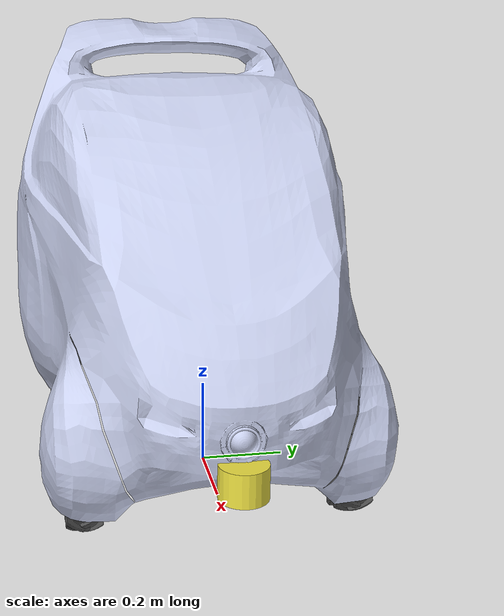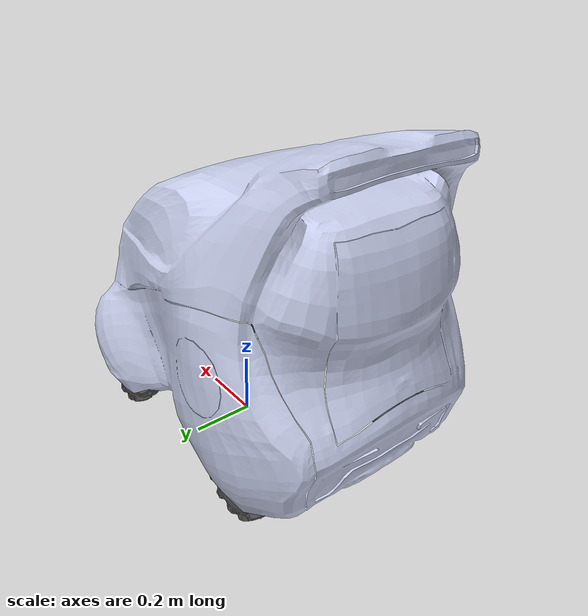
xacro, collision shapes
<?xml version="1.0"?>

<robot
  name="patrol_base"
  xmlns:xacro="http://www.ros.org/wiki/xacro"
  >

<xacro:include filename="$(find patrol_v3)/urdf/patrol.gazebo" />
  <xacro:property name="cameraSize" value="0.05"/>
  <xacro:property name="cameraMass" value="0.1"/>
  <xacro:arg name="gpu" default="false"/>
  <xacro:property name="gpu" value="$(arg gpu)" />

  <link  name="base_link" />

  <link
    name="chassis">
    <inertial>
      <origin
        xyz="-0.05588 -0.021836 0.11979"
        rpy="0 0 0" />
      <mass
        value="60" />
      <inertia
        ixx="0.2844"
        ixy="0.00042222"
        ixz="0.045634"
        iyy="0.36594"
        iyz="-0.000122"
        izz="0.4528" />
    </inertial>
    <visual>
      <origin
        xyz="0 0 0"
        rpy="0 0 0" />
      <geometry>
        <mesh
          filename="package://patrol_v3/meshes/chassis.STL" />
      </geometry>
      <material
        name="">
        <color
          rgba="0.79216 0.81961 0.93333 1" />
      </material>
    </visual>
    <collision>
      <origin
        xyz="0 0 0"
        rpy="0 0 0" />
      <geometry>
        <mesh
          filename="package://patrol_v3/meshes/chassis.STL" />
      </geometry>
    </collision>
  </link>

  <joint
    name="Jchassis"
    type="fixed">
    <origin
      xyz="0 0 0.2500"
      rpy="0 0 0" />
    <parent
      link="base_link" />
    <child
      link="chassis" />
    <axis
      xyz="0 0 0" />
  </joint>

  <link
    name="FL">
    <inertial>
      <origin
        xyz="-3.5376E-06 4.1624E-06 -0.041529"
        rpy="0 0 0" />
      <mass
        value="1.1763" />
      <inertia
        ixx="0.0072471"
        ixy="2.8453E-07"
        ixz="1.5822E-07"
        iyy="0.0072464"
        iyz="-6.4823E-07"
        izz="0.012903" />
    </inertial>
    <visual>
      <origin
        xyz="0 0 0"
        rpy="0 0 0" />
      <geometry>
        <mesh
          filename="package://patrol_v3/meshes/FL.STL" />
      </geometry>
      <material
        name="">
        <color
          rgba="0.29804 0.29804 0.29804 1" />
      </material>
    </visual>
    <collision>
      <origin
        xyz="0 0 0"
        rpy="0 0 0" />
      <geometry>
        <mesh
          filename="package://patrol_v3/meshes/FL.STL" />
      </geometry>
    </collision>
  </link>
  <joint
    name="FLJ"
    type="continuous">
    <origin
      xyz="0.29133 0.23565 -0.1178"
      rpy="1.5708 -1.5399 0" />
    <parent
      link="chassis" />
    <child
      link="FL" />
    <axis
      xyz="0 0 -1" />
  </joint>
  <link
    name="FR">
    <inertial>
      <origin
        xyz="-3.4705E-06 4.7858E-06 0.041533"
        rpy="0 0 0" />
      <mass
        value="1.1763" />
      <inertia
        ixx="0.0072471"
        ixy="2.854E-07"
        ixz="1.5817E-07"
        iyy="0.0072464"
        iyz="-6.4816E-07"
        izz="0.012903" />
    </inertial>
    <visual>
      <origin
        xyz="0 0 0"
        rpy="0 0 0" />
      <geometry>
        <mesh
          filename="package://patrol_v3/meshes/FR.STL" />
      </geometry>
      <material
        name="">
        <color
          rgba="0.29804 0.29804 0.29804 1" />
      </material>
    </visual>
    <collision>
      <origin
        xyz="0 0 0"
        rpy="0 0 0" />
      <geometry>
        <mesh
          filename="package://patrol_v3/meshes/FR.STL" />
      </geometry>
    </collision>
  </link>
  <joint
    name="FRJ"
    type="continuous">
    <origin
      xyz="0.29133 -0.27837 -0.1178"
      rpy="-1.5708 -0.32548 3.1416" />
    <parent
      link="chassis" />
    <child
      link="FR" />
    <axis
      xyz="0 0 -1" />
  </joint>
  <link
    name="RL">
    <inertial>
      <origin
        xyz="-3.5397E-06 4.7909E-06 -0.041529"
        rpy="0 0 0" />
      <mass
        value="1.1763" />
      <inertia
        ixx="0.0072471"
        ixy="2.8444E-07"
        ixz="1.5824E-07"
        iyy="0.0072464"
        iyz="-6.4835E-07"
        izz="0.012903" />
    </inertial>
    <visual>
      <origin
        xyz="0 0 0"
        rpy="0 0 0" />
      <geometry>
        <mesh
          filename="package://patrol_v3/meshes/RL.STL" />
      </geometry>
      <material
        name="">
        <color
          rgba="0.29804 0.29804 0.29804 1" />
      </material>
    </visual>
    <collision>
      <origin
        xyz="0 0 0"
        rpy="0 0 0" />
      <geometry>
        <mesh
          filename="package://patrol_v3/meshes/RL.STL" />
      </geometry>
    </collision>
  </link>
  <joint
    name="RLJ"
    type="continuous">
    <origin
      xyz="-0.34867 0.23181 -0.1178"
      rpy="-1.5708 -0.47562 3.1416" />
    <parent
      link="chassis" />
    <child
      link="RL" />
    <axis
      xyz="0 0 -1" />
  </joint>
  <link
    name="RR">
    <inertial>
      <origin
        xyz="-3.5816E-06 4.783E-06 0.041533"
        rpy="0 0 0" />
      <mass
        value="1.1763" />
      <inertia
        ixx="0.0072471"
        ixy="2.8396E-07"
        ixz="1.5827E-07"
        iyy="0.0072464"
        iyz="-6.4852E-07"
        izz="0.012903" />
    </inertial>
    <visual>
      <origin
        xyz="0 0 0"
        rpy="0 0 0" />
      <geometry>
        <mesh
          filename="package://patrol_v3/meshes/RR.STL" />
      </geometry>
      <material
        name="">
        <color
          rgba="0.29804 0.29804 0.29804 1" />
      </material>
    </visual>
    <collision>
      <origin
        xyz="0 0 0"
        rpy="0 0 0" />
      <geometry>
        <mesh
          filename="package://patrol_v3/meshes/RR.STL" />
      </geometry>
    </collision>
  </link>
  <joint
    name="RRJ"
    type="continuous">
    <origin
      xyz="-0.34867 -0.28222 -0.1178"
      rpy="-1.5708 0.73947 -3.1416" />
    <parent
      link="chassis" />
    <child
      link="RR" />
    <axis
      xyz="0 0 -1" />
  </joint>
  <joint
    name="range1_joint"
    type="fixed">
    <origin
      xyz="0.60383 -0.023174 0.403296"
      rpy="0 0.296706 0 " />
    <parent
      link="base_link" />
    <child
      link="range1" />
  </joint>

  <link  name="range1" />
    <joint
    name="range2_joint"
    type="fixed">
    <origin
      xyz="0.60383 0.023174 0.403296"
      rpy="0 0.296706 0.349066 " />
    <parent
      link="base_link" />
    <child
      link="range2" />
  </joint>

  <link  name="range2" />
    <joint
    name="range3_joint"
    type="fixed">
    <origin
      xyz="0.60383 -0.063174 0.403296"
      rpy="0 0.296706 -0.349066 " />
    <parent
      link="base_link" />
    <child
      link="range3" />
  </joint>

  <link  name="range3" />
      <joint
    name="range4_joint"
    type="fixed">
    <origin
      xyz="0.52383 -0.303174 0.203296"
      rpy="0 0 -0.349066 " />
    <parent
      link="base_link" />
    <child
      link="range4" />
  </joint>

  <link  name="range4" />
      <joint
    name="range5_joint"
    type="fixed">
    <origin
      xyz="0.52383 0.263174 0.203296"
      rpy="0 0 0.349066 " />
    <parent
      link="base_link" />
    <child
      link="range5" />
  </joint>

  <link  name="range5" />

  <xacro:include filename="$(find velodyne_description)/urdf/VLP-16.urdf.xacro"/>
  <VLP-16 parent="base_link" name="velodyne" topic="/velodyne_points" hz="10" samples="440" gpu="${gpu}" min_angle="-1.9198" max_angle="1.9198">
    <origin xyz="0.60383 -0.023174 0.200096" rpy="0 0 0" />
  </VLP-16>

<transmission name="front_left_trans">
  <type>transmission_interface/SimpleTransmission</type>
  <joint name="FLJ">
    <hardwareInterface>hardware_interface/VelocityJointInterface</hardwareInterface>
  </joint>
  <actuator name="Front_Left_Motor">
    <hardwareInterface>hardware_interface/VelocityJointInterface</hardwareInterface>
    <mechanicalReduction>1</mechanicalReduction>
  </actuator>
</transmission>

<transmission name="front_right_trans">
  <type>transmission_interface/SimpleTransmission</type>
  <joint name="FRJ">
    <hardwareInterface>hardware_interface/VelocityJointInterface</hardwareInterface>
  </joint>
  <actuator name="Front_Right_Motor">
    <hardwareInterface>hardware_interface/VelocityJointInterface</hardwareInterface>
    <mechanicalReduction>1</mechanicalReduction>
  </actuator>
</transmission>

<transmission name="back_left_trans">
  <type>transmission_interface/SimpleTransmission</type>
  <joint name="RLJ">
    <hardwareInterface>hardware_interface/VelocityJointInterface</hardwareInterface>
  </joint>
  <actuator name="Back_Left_Motor">
    <hardwareInterface>hardware_interface/VelocityJointInterface</hardwareInterface>
    <mechanicalReduction>1</mechanicalReduction>
  </actuator>
</transmission>

<transmission name="back_right_trans">
  <type>transmission_interface/SimpleTransmission</type>
  <joint name="RRJ">
    <hardwareInterface>hardware_interface/VelocityJointInterface</hardwareInterface>
  </joint>
  <actuator name="Back_Right_Motor">
    <hardwareInterface>hardware_interface/VelocityJointInterface</hardwareInterface>
    <mechanicalReduction>1</mechanicalReduction>
  </actuator>
</transmission>

</robot>

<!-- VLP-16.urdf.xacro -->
<robot xmlns:xacro="http://www.ros.org/wiki/xacro" name="VLP-16">
  <xacro:property name="M_PI" value="3.1415926535897931" />
  <xacro:macro name="VLP-16" params="*origin is_sim:=true parent:=base_link name:=velodyne tf_prefix:='' topic:=/velodyne_points organize_cloud:=false hz:=10 lasers:=16 samples:=1875 collision_range:=0.3 min_range:=0.0 max_range:=100.0 noise:=0.008 min_angle:=-${M_PI} max_angle:=${M_PI} gpu:=false">

    <joint name="${name}_base_mount_joint" type="fixed">
      <xacro:insert_block name="origin" />
      <parent link="${parent}"/>
      <child link="${name}_base_link"/>
    </joint>

    <link name="${name}_base_link">
      <inertial>
        <mass value="0.83"/>
        <origin xyz="0 0 0.03585"/>
        <inertia ixx="${(0.83 * (3.0*0.0516*0.0516 + 0.0717*0.0717)) / 12.0}" ixy="0" ixz="0"
          iyy="${(0.83 * (3.0*0.0516*0.0516 + 0.0717*0.0717)) / 12.0}" iyz="0"
          izz="${0.5 * 0.83 * (0.0516*0.0516)}"/>
      </inertial>
      <visual>
        <geometry>
          <mesh filename="package://velodyne_description/meshes/VLP16_base_1.dae" />
        </geometry>
      </visual>
      <visual>
        <geometry>
          <mesh filename="package://velodyne_description/meshes/VLP16_base_2.dae" />
        </geometry>
      </visual>
      <collision>
        <origin rpy="0 0 0" xyz="0 0 0.03585"/>
        <geometry>
          <cylinder radius="0.0516" length="0.0717"/>
        </geometry>
      </collision>
    </link>

    <joint name="${name}_base_scan_joint" type="fixed" >
      <origin xyz="0 0 0.0377" rpy="0 0 0" />
      <parent link="${name}_base_link" />
      <child link="${name}"/>
    </joint>

    <link name="${name}">
      <inertial>
        <mass value="0.01"/>
        <origin xyz="0 0 0"/>
        <inertia ixx="1e-7" ixy="0" ixz="0" iyy="1e-7" iyz="0" izz="1e-7"/>
      </inertial>
      <visual>
        <origin xyz="0 0 -0.0377" />
        <geometry>
          <mesh filename="package://velodyne_description/meshes/VLP16_scan.dae" />
        </geometry>
      </visual>
      <collision>
        <geometry>
          <sphere radius="0"/>
        </geometry>
      </collision>
    </link>

    <!-- Gazebo requires the velodyne_gazebo_plugins package -->
    <xacro:if value="${is_sim}">
        <gazebo reference="${name}">
            <xacro:if value="${gpu}">
                <sensor type="gpu_ray" name="${name}-VLP16">
                <pose>0 0 0 0 0 0</pose>
                <visualize>false</visualize>
                <update_rate>${hz}</update_rate>
                <ray>
                    <scan>
                    <horizontal>
                        <samples>${samples}</samples>
                        <resolution>1</resolution>
                        <min_angle>${min_angle}</min_angle>
                        <max_angle>${max_angle}</max_angle>
                    </horizontal>
                    <vertical>
                        <samples>${lasers}</samples>
                        <resolution>1</resolution>
                        <min_angle>-${15.0*M_PI/180.0}</min_angle>
                        <max_angle> ${15.0*M_PI/180.0}</max_angle>
                    </vertical>
                    </scan>
                    <range>
                    <min>${collision_range}</min>
                    <max>${max_range+1}</max>
                    <resolution>0.001</resolution>
                    </range>
                    <noise>
                    <type>gaussian</type>
                    <mean>0.0</mean>
                    <stddev>0.0</stddev>
                    </noise>
                </ray>
                <plugin name="gazebo_ros_laser_controller" filename="libgazebo_ros_velodyne_laser.so">
                    <ros>
                    <namespace>/${name}</namespace>
                    <remapping>~/out:=${topic}</remapping>
                    </ros>
                    <tf_prefix>${tf_prefix}</tf_prefix>
                    <frame_name>${name}</frame_name>
                    <organize_cloud>${organize_cloud}</organize_cloud>
                    <min_range>${min_range}</min_range>
                    <max_range>${max_range}</max_range>
                    <gaussian_noise>${noise}</gaussian_noise>
                </plugin>
                </sensor>
            </xacro:if>
            <xacro:unless value="${gpu}">
                <sensor type="ray" name="${name}-VLP16">
                <pose>0 0 0 0 0 0</pose>
                <visualize>false</visualize>
                <update_rate>${hz}</update_rate>
                <ray>
                    <scan>
                    <horizontal>
                        <samples>${samples}</samples>
                        <resolution>1</resolution>
                        <min_angle>${min_angle}</min_angle>
                        <max_angle>${max_angle}</max_angle>
                    </horizontal>
                    <vertical>
                        <samples>${lasers}</samples>
                        <resolution>1</resolution>
                        <min_angle>-${15.0*M_PI/180.0}</min_angle>
                        <max_angle> ${15.0*M_PI/180.0}</max_angle>
                    </vertical>
                    </scan>
                    <range>
                    <min>${collision_range}</min>
                    <max>${max_range+1}</max>
                    <resolution>0.001</resolution>
                    </range>
                    <noise>
                    <type>gaussian</type>
                    <mean>0.0</mean>
                    <stddev>0.0</stddev>
                    </noise>
                </ray>
                <plugin name="gazebo_ros_laser_controller" filename="libgazebo_ros_velodyne_laser.so">
                    <ros>
                    <namespace>/${name}</namespace>
                    <remapping>~/out:=${topic}</remapping>
                    </ros>
                    <tf_prefix>${tf_prefix}</tf_prefix>
                    <frame_name>${name}</frame_name>
                    <organize_cloud>${organize_cloud}</organize_cloud>
                    <min_range>${min_range}</min_range>
                    <max_range>${max_range}</max_range>
                    <gaussian_noise>${noise}</gaussian_noise>
                </plugin>
                </sensor>
            </xacro:unless>
        </gazebo>
    </xacro:if>

  </xacro:macro>
</robot>
